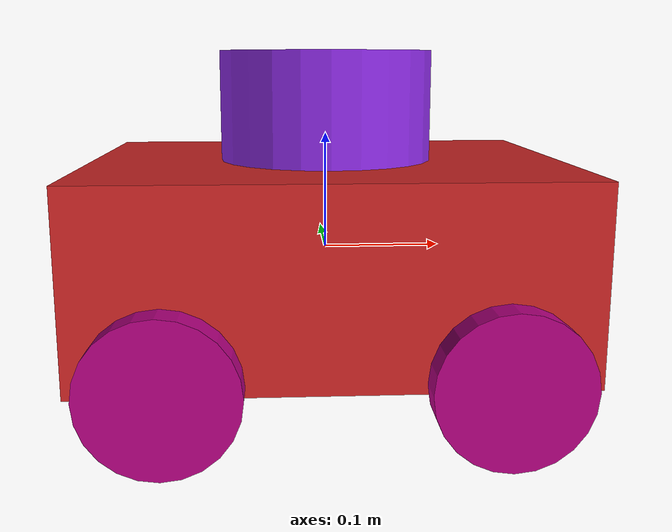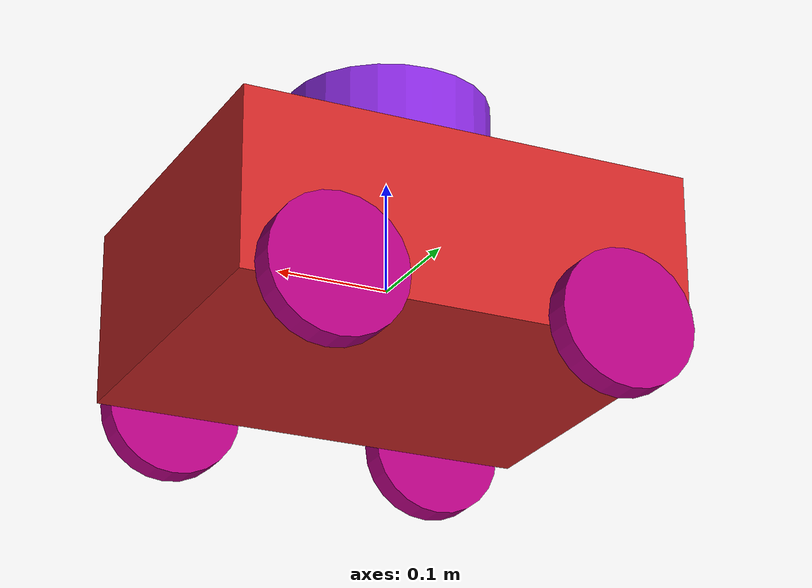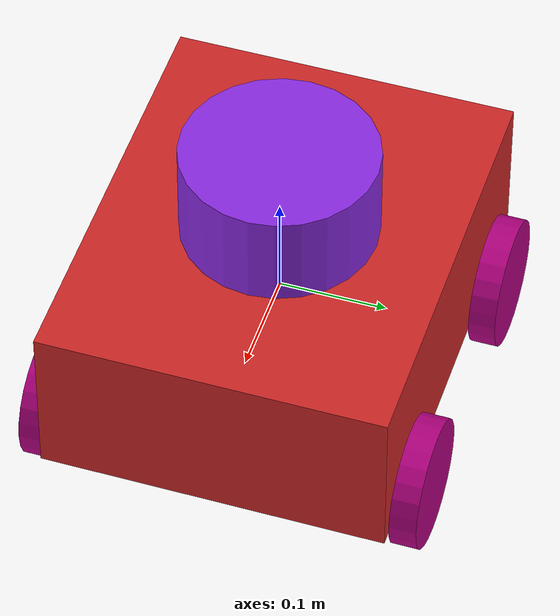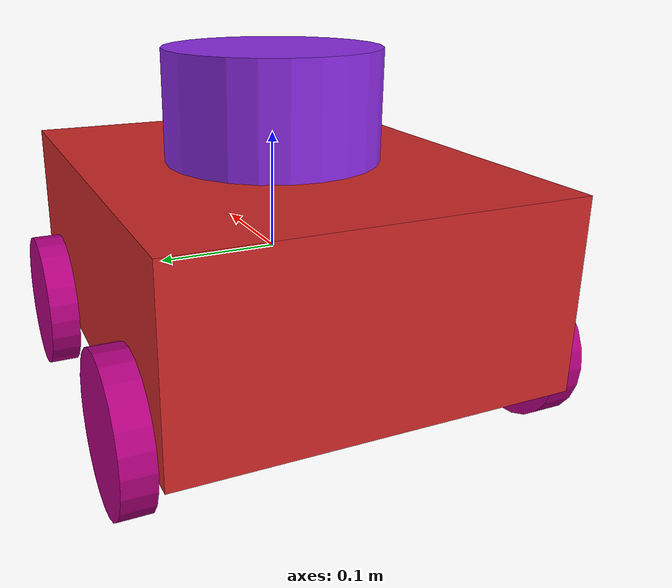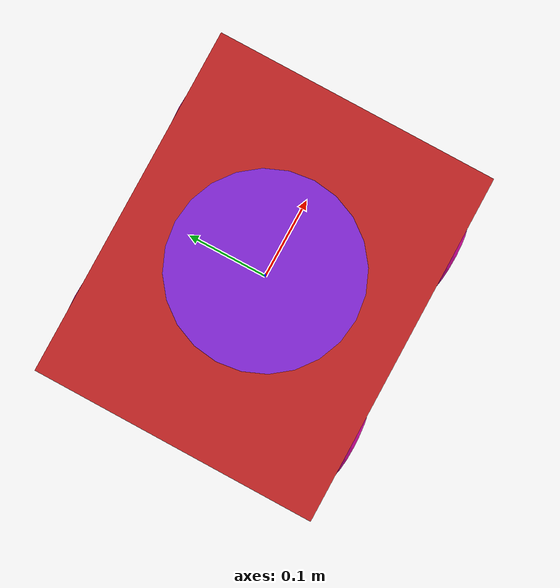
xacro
<robot name="differential_drive_robot" xmlns:xacro="http://www.ros.org/wiki/xacro">
<!-- body dimensions-->
<xacro:property name="body_link_x_dim" value="0.397"/>
<xacro:property name="body_link_y_dim" value="0.320"/>
<xacro:property name="body_link_z_dim" value="0.156"/>

<!-- wheel dimensions-->
<xacro:property name="wheel_link_radius" value="0.06"/>
<xacro:property name="wheel_link_length" value="0.025"/>
<xacro:property name="wheel_link_z_location" value="-0.07"/>

<!--Material density-->
<xacro:property name="body_density" value="27100.0"/><!--여기바꿈0추가-->
<xacro:property name="wheel_density" value="27100.0"/>

<!-- PI constant-->
<xacro:property name="pi_const" value="3.14159265"/>

<!-- Robot body and wheel mass-->
<xacro:property name="body_mass" value="${body_density*body_link_x_dim*body_link_y_dim*body_link_z_dim}"/>
<xacro:property name="wheel_mass" value="${wheel_density*pi_const*wheel_link_radius*wheel_link_radius*wheel_link_length}"/>

<!-- Moment of inertia of the wheel-->
<xacro:property name="Iz_wheel" value="${0.5*wheel_mass*wheel_link_radius*wheel_link_radius}"/>
<xacro:property name="I_wheel" value="${(1.0/12.0)*wheel_mass*(3.0*wheel_link_radius*wheel_link_radius+wheel_link_length*wheel_link_length)}"/>

<!-- color -->
<material name="blue">
    <color rgba = "0 0 0.8 1"/>
  </material>

  <material name="gray">
    <color rgba = "1 1 1 1"/>
  </material>

  <material name="blueviolet">
    <color rgba = "0.54 0.16 0.88 1"/>
  </material>

  <material name="changF">
    <color rgba = "0.7 0 0.5 1"/>
  </material>

<!-- This macro defines the complete inertial section of the wheel-->
<!-- It is used later in the code -->
<xacro:macro name="inertia_wheel">
        <inertial>
        <origin rpy="0 0 0" xyz="0 0 0"/>
        <mass value="${wheel_mass}"/>
        <inertia ixx="${I_wheel}" ixy="0.0" ixz="0.0" iyy="${I_wheel}" iyz="0" izz="${Iz_wheel}"/>
        </inertial>
</xacro:macro>

<!-- over here we includethe file that defines extra Gazebo options and motion control driver-->
<xacro:include filename="$(find robot_model_pkg)/urdf/robot.gazebo"/>

<!-- FROM HERE WE DEFINE LINKS, JPOINTS BY CHANG JUN LEE-->

<!-- we need to have this footprint link otherwise Gazebo will complain-->
<link name="footprint">
</link>
<joint name="footprint_joint" type="fixed">
        <parent link="footprint"/>
        <child link="base_link"/>
</joint>

<!-- START : BODY LINK OF THE ROBOT-->

<link name="base_link">
        <visual>
                <geometry>
                        <box size="${body_link_x_dim} ${body_link_y_dim} ${body_link_z_dim}" />
                </geometry>
        <origin rpy="0 0 0" xyz="0 0 0" />
        </visual>

        <collision>
                <geometry>
                        <box size="${body_link_x_dim} ${body_link_y_dim} ${body_link_z_dim}" />
                </geometry>
                <origin rpy="0 0 0" xyz="0 0 0" />
        </collision>

        <inertial>
                <origin rpy="0 0 0" xyz="0 0 0" />
                <mass value="${body_mass}"/>
        <inertia
        ixx="${(1/12)*body_mass*(body_link_y_dim*body_link_y_dim+body_link_z_dim*body_link_z_dim)}"
        ixy="0"
        ixz="0"
        iyy="${(1/12)*body_mass*(body_link_x_dim*body_link_x_dim+body_link_z_dim*body_link_z_dim)}"
        iyz="0"
        izz="${(1/12)*body_mass*(body_link_y_dim*body_link_y_dim+body_link_x_dim*body_link_x_dim)}" />
        </inertial>
</link>

<joint name="wheel1_joint" type="continuous">
        <parent link="base_link"/>
        <child link="wheel1_link"/>
        <origin xyz="${-body_link_x_dim/2+1.2*wheel_link_radius} ${-body_link_y_dim/2-wheel_link_length/2} ${wheel_link_z_location}"
        rpy = "0 0 0"/>
        <axis xyz="0 1 0"/>
        <limit effort="1000" velocity="1000"/>
        <dynamics damping="1.0" friction="1.0" />
</joint>

<link name="wheel1_link">
        <visual>
                <origin rpy="1.570795 0 0" xyz="0 0 0"/>
                <geometry>
                        <cylinder length="${wheel_link_length}" radius="${wheel_link_radius}"/>
                </geometry>
                 <material name = "changF"/>
        </visual>

        <collision>
                <origin rpy="1.570795 0 0" xyz="0 0 0"/>
                <geometry>
                        <cylinder length="${wheel_link_length}" radius="${wheel_link_radius}"/>
                </geometry>
        </collision>

        <xacro:inertia_wheel/>
</link>

<!-- END: BACK RIGTH WHEEL OF THE ROBOT AND THE JOINT-->

<!-- START : BACK LEFT WHEEL OF THE ROBOT AND THE JOINT-->

<joint name="wheel2_joint" type="continuous">
        <parent link="base_link"/>
        <child link="wheel2_link"/>
        <origin xyz="${-body_link_x_dim/2+1.2*wheel_link_radius} ${body_link_y_dim/2+wheel_link_length/2} ${wheel_link_z_location}"
        rpy = "0 0 0"/>
        <axis xyz="0 1 0"/>
        <limit effort="1000" velocity="1000"/>
        <dynamics damping="1.0" friction="1.0" />
</joint>

<link name="wheel2_link">
        <visual>
                <origin rpy="1.570795 0 0" xyz="0 0 0" />
                <geometry>
                        <cylinder length="${wheel_link_length}" radius="${wheel_link_radius}"/>
                </geometry>
                <material name = "changF"/>
        </visual>

        <collision>
                <origin rpy="1.570795 0 0" xyz="0 0 0"/>
                <geometry>
                        <cylinder length="${wheel_link_length}" radius="${wheel_link_radius}"/>
                </geometry>
        </collision>
        <xacro:inertia_wheel/>
</link>

<!-- END: BACK LEFT WHEEL OF THE ROBOT AND THE JOINT-->

<!-- START : FRONT RIGTH WHEEL OF THE ROBOT AND THE JOINT-->
<joint name="wheel3_joint" type="continuous">
        <parent link="base_link"/>
        <child link="wheel3_link"/>
        <origin xyz="${body_link_x_dim/2-1.2*wheel_link_radius} ${-body_link_y_dim/2-wheel_link_length/2}
        ${wheel_link_z_location}" rpy="0 0 0"/>
        <axis xyz="0 1 0"/>
        <limit effort="1000" velocity="1000"/>
        <dynamics damping="1.0" friction="1.0"/>
</joint>

<link name="wheel3_link">
        <visual>
                <origin rpy="1.570795 0 0" xyz="0 0 0" />
                <geometry>
                        <cylinder length="${wheel_link_length}" radius="${wheel_link_radius}"/>
                </geometry>
                <material name = "changF"/>
        </visual>
        <collision>
                <origin rpy="1.570795 0 0" xyz="0 0 0" />
                        <geometry>
                                <cylinder length="${wheel_link_length}" radius="${wheel_link_radius}"/>
                        </geometry>
                </collision>
        <xacro:inertia_wheel/>
</link>

<!-- END: FRONT RIGHT WHEEL OF THE ROBOT AND THE JOINT-->

<!-- START : FRONT LEFT WHEEL OF THE ROBOT AND THE JOINT-->

<joint name="wheel4_joint" type="continuous">
        <parent link="base_link"/>
        <child link="wheel4_link"/>
        <origin xyz="${body_link_x_dim/2-1.2*wheel_link_radius} ${body_link_y_dim/2+wheel_link_length/2} ${wheel_link_z_location}"
        rpy="0 0 0"/>
        <axis xyz="0 1 0"/>
        <limit effort="1000" velocity="1000"/>
        <dynamics damping="1.0" friction="1.0"/>
</joint>

<link name="wheel4_link">
        <visual>
                <origin rpy="1.570795 0 0" xyz="0 0 0" />
                <geometry>
                        <cylinder length="${wheel_link_length}" radius="${wheel_link_radius}"/>
                </geometry>
                <material name = "changF"/>
        </visual>
        <collision>
                <origin rpy="1.570795 0 0" xyz="0 0 0" />
                <geometry>
                        <cylinder length="${wheel_link_length}" radius="${wheel_link_radius}"/>
                </geometry>
        </collision>
        <xacro:inertia_wheel/>
</link>

  <joint name = "head_scanner" type = "fixed">
    <origin xyz = "0 0 0.07" rpy = "0 0 0"/>
    <parent link = "base_link"/>
    <child link = "base_scan"/>
  </joint>

   <link name="base_scan">
    <visual>
      <origin xyz="0 0 0.05" rpy = "0 0 1.570795"/>
      <geometry>
        <cylinder length="0.1" radius="0.09"/>
      </geometry>
      <material name = "blueviolet"/>
    </visual>
    <collision>
      <origin xyz="0 0 0.05" rpy = "0 0 1.570795"/>
      <geometry>
        <cylinder length="0.1" radius="0.09"/>
      </geometry>
    </collision>
  </link>
<!-- END: FRONT RIGHT WHEEL OF THE ROBOT AND THE JOINT-->
</robot>
